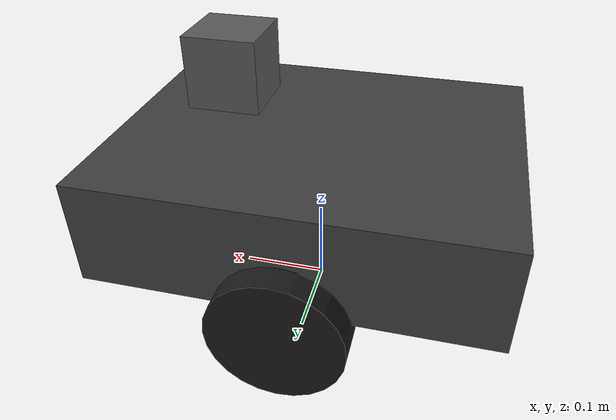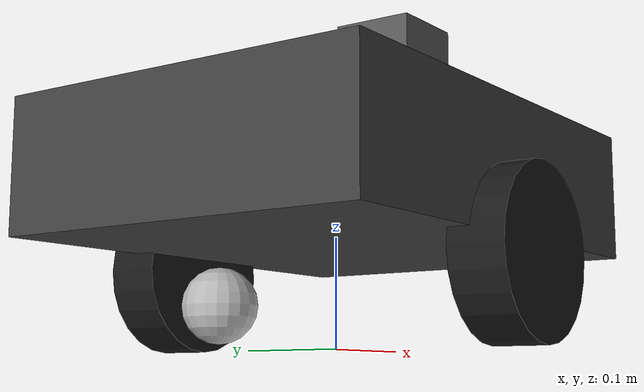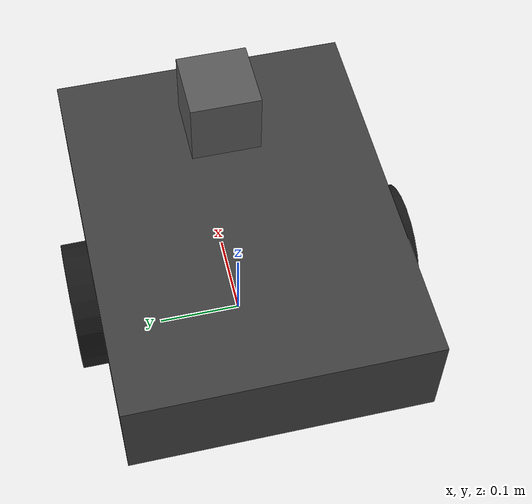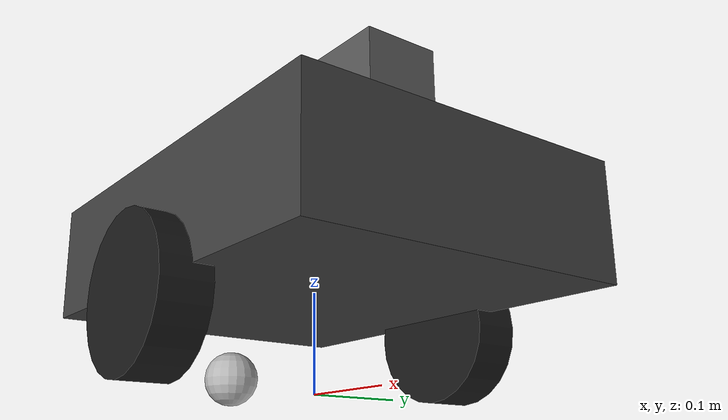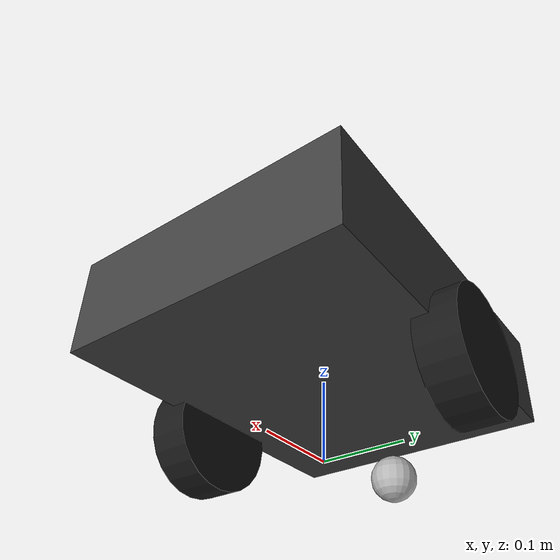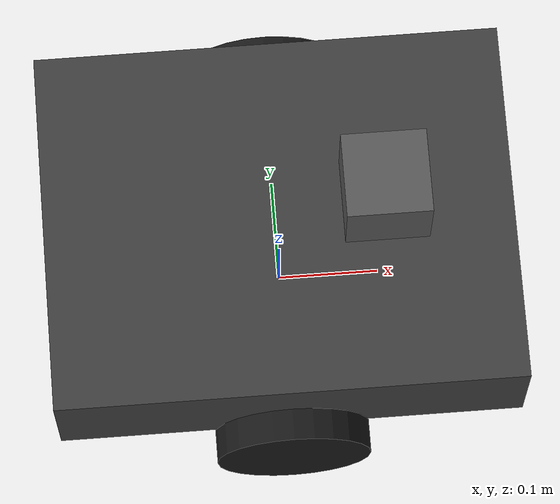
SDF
<?xml version="1.0"?>
<sdf version="1.9">
  <model name="surrogate_rover">
    <self_collide>false</self_collide>

    <link name="base_link">
      <pose>0 0 0.15 0 0 0</pose>
      <inertial>
        <mass>20.0</mass>
        <inertia>
          <ixx>0.65</ixx>
          <iyy>0.95</iyy>
          <izz>1.2</izz>
          <ixy>0.0</ixy>
          <ixz>0.0</ixz>
          <iyz>0.0</iyz>
        </inertia>
      </inertial>
      <collision name="base_collision">
        <geometry>
          <box>
            <size>0.45 0.35 0.12</size>
          </box>
        </geometry>
        <surface>
          <friction>
            <ode>
              <mu>0.8</mu>
              <mu2>0.8</mu2>
            </ode>
          </friction>
        </surface>
      </collision>
      <visual name="base_visual">
        <geometry>
          <box>
            <size>0.45 0.35 0.12</size>
          </box>
        </geometry>
        <material>
          <ambient>0.2 0.2 0.2 1</ambient>
          <diffuse>0.25 0.25 0.25 1</diffuse>
        </material>
      </visual>

      <sensor name="imu_sensor" type="imu">
        <pose>0 0 0.0 0 0 0</pose>
        <always_on>true</always_on>
        <update_rate>100</update_rate>
        <topic>/imu/data</topic>
      </sensor>
    </link>

    <link name="left_wheel_link">
      <pose>0.0 0.18 0.075 1.5708 0 0</pose>
      <inertial>
        <mass>1.0</mass>
        <inertia>
          <ixx>0.002</ixx>
          <iyy>0.001</iyy>
          <izz>0.002</izz>
          <ixy>0.0</ixy>
          <ixz>0.0</ixz>
          <iyz>0.0</iyz>
        </inertia>
      </inertial>
      <collision name="left_wheel_collision">
        <geometry>
          <cylinder>
            <radius>0.075</radius>
            <length>0.05</length>
          </cylinder>
        </geometry>
      </collision>
      <visual name="left_wheel_visual">
        <geometry>
          <cylinder>
            <radius>0.075</radius>
            <length>0.05</length>
          </cylinder>
        </geometry>
        <material>
          <ambient>0.05 0.05 0.05 1</ambient>
          <diffuse>0.1 0.1 0.1 1</diffuse>
        </material>
      </visual>
    </link>

    <link name="right_wheel_link">
      <pose>0.0 -0.18 0.075 1.5708 0 0</pose>
      <inertial>
        <mass>1.0</mass>
        <inertia>
          <ixx>0.002</ixx>
          <iyy>0.001</iyy>
          <izz>0.002</izz>
          <ixy>0.0</ixy>
          <ixz>0.0</ixz>
          <iyz>0.0</iyz>
        </inertia>
      </inertial>
      <collision name="right_wheel_collision">
        <geometry>
          <cylinder>
            <radius>0.075</radius>
            <length>0.05</length>
          </cylinder>
        </geometry>
      </collision>
      <visual name="right_wheel_visual">
        <geometry>
          <cylinder>
            <radius>0.075</radius>
            <length>0.05</length>
          </cylinder>
        </geometry>
        <material>
          <ambient>0.05 0.05 0.05 1</ambient>
          <diffuse>0.1 0.1 0.1 1</diffuse>
        </material>
      </visual>
    </link>

    <link name="rear_caster_link">
      <pose>-0.16 0 0.03 0 0 0</pose>
      <inertial>
        <mass>0.2</mass>
        <inertia>
          <ixx>0.0002</ixx>
          <iyy>0.0002</iyy>
          <izz>0.0002</izz>
          <ixy>0.0</ixy>
          <ixz>0.0</ixz>
          <iyz>0.0</iyz>
        </inertia>
      </inertial>
      <collision name="rear_caster_collision">
        <geometry>
          <sphere>
            <radius>0.03</radius>
          </sphere>
        </geometry>
        <surface>
          <friction>
            <ode>
              <mu>0.3</mu>
              <mu2>0.3</mu2>
            </ode>
          </friction>
        </surface>
      </collision>
      <visual name="rear_caster_visual">
        <geometry>
          <sphere>
            <radius>0.03</radius>
          </sphere>
        </geometry>
      </visual>
    </link>

    <link name="sensor_head_link">
      <pose>0.1 0 0.28 0 0 0</pose>
      <inertial>
        <mass>0.8</mass>
        <inertia>
          <ixx>0.002</ixx>
          <iyy>0.002</iyy>
          <izz>0.002</izz>
          <ixy>0.0</ixy>
          <ixz>0.0</ixz>
          <iyz>0.0</iyz>
        </inertia>
      </inertial>
      <collision name="sensor_head_collision">
        <geometry>
          <box>
            <size>0.08 0.08 0.08</size>
          </box>
        </geometry>
      </collision>
      <visual name="sensor_head_visual">
        <geometry>
          <box>
            <size>0.08 0.08 0.08</size>
          </box>
        </geometry>
        <material>
          <ambient>0.3 0.3 0.3 1</ambient>
          <diffuse>0.35 0.35 0.35 1</diffuse>
        </material>
      </visual>

      <sensor name="lidar_sensor" type="gpu_lidar">
        <pose>0 0 0.05 0 0 0</pose>
        <always_on>true</always_on>
        <update_rate>20</update_rate>
        <topic>/scan</topic>
        <lidar>
          <scan>
            <horizontal>
              <samples>720</samples>
              <resolution>1</resolution>
              <min_angle>-3.14159</min_angle>
              <max_angle>3.14159</max_angle>
            </horizontal>
          </scan>
          <range>
            <min>0.12</min>
            <max>15.0</max>
            <resolution>0.01</resolution>
          </range>
        </lidar>
      </sensor>

      <sensor name="depth_camera_sensor" type="depth_camera">
        <pose>0.1 0 0.0 0 0 0</pose>
        <always_on>true</always_on>
        <update_rate>15</update_rate>
        <topic>/camera/depth/image_raw</topic>
        <camera>
          <horizontal_fov>1.047</horizontal_fov>
          <image>
            <width>640</width>
            <height>480</height>
            <format>R_FLOAT32</format>
          </image>
          <clip>
            <near>0.2</near>
            <far>8.0</far>
          </clip>
          <camera_info_topic>/camera/depth/camera_info</camera_info_topic>
        </camera>
      </sensor>
    </link>

    <joint name="left_wheel_joint" type="revolute">
      <parent>base_link</parent>
      <child>left_wheel_link</child>
      <axis>
        <xyz>0 1 0</xyz>
        <limit>
          <lower>-1000000000</lower>
          <upper>1000000000</upper>
          <effort>1000000</effort>
        </limit>
      </axis>
    </joint>

    <joint name="right_wheel_joint" type="revolute">
      <parent>base_link</parent>
      <child>right_wheel_link</child>
      <axis>
        <xyz>0 1 0</xyz>
        <limit>
          <lower>-1000000000</lower>
          <upper>1000000000</upper>
          <effort>1000000</effort>
        </limit>
      </axis>
    </joint>

    <joint name="rear_caster_joint" type="fixed">
      <parent>base_link</parent>
      <child>rear_caster_link</child>
    </joint>

    <joint name="sensor_head_joint" type="fixed">
      <parent>base_link</parent>
      <child>sensor_head_link</child>
    </joint>

    <plugin
      filename="gz-sim-diff-drive-system"
      name="gz::sim::systems::DiffDrive">
      <left_joint>left_wheel_joint</left_joint>
      <right_joint>right_wheel_joint</right_joint>
      <wheel_separation>0.36</wheel_separation>
      <wheel_radius>0.075</wheel_radius>
      <topic>/model/surrogate_rover/cmd_vel</topic>
      <odom_topic>/model/surrogate_rover/odometry</odom_topic>
      <tf_topic>/model/surrogate_rover/tf</tf_topic>
      <frame_id>odom</frame_id>
      <child_frame_id>base_link</child_frame_id>
      <odom_publish_frequency>30</odom_publish_frequency>
    </plugin>

    <plugin
      filename="gz-sim-joint-state-publisher-system"
      name="gz::sim::systems::JointStatePublisher">
    </plugin>
  </model>
</sdf>
